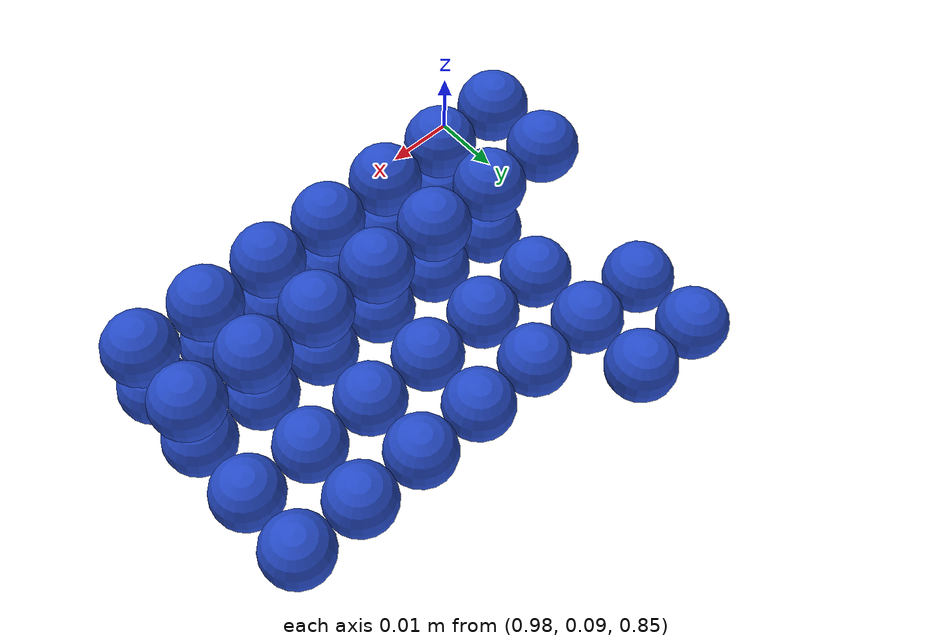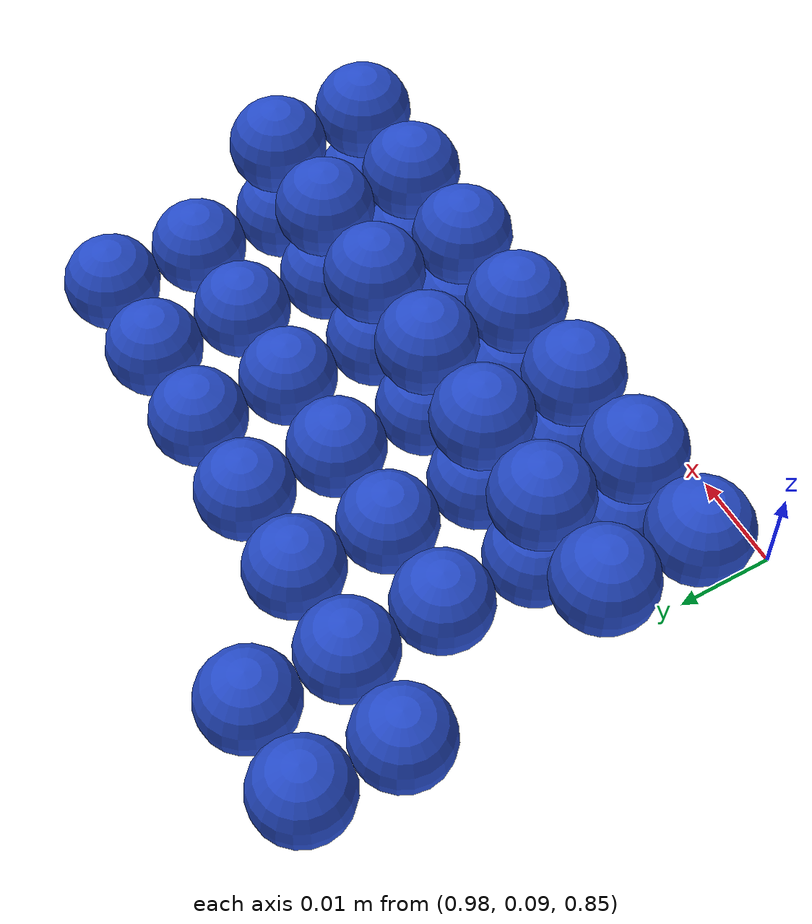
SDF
<sdf version="1.4">
 <world name="default">
  <include><uri>model://ground_plane</uri></include>
  <include><uri>model://sun</uri></include>
  <model name="ball_bearing_4">
   <link name="link">
    <pose>0 0 0.003 0 0 0</pose>
    <inertial>
     <mass>0.0011</mass>
     <inertia>
      <ixx>3.96e-09</ixx>
      <ixy>0</ixy>
      <ixz>0</ixz>
      <iyy>3.96e-09</iyy>
      <iyz>0</iyz>
      <izz>3.96e-09</izz>
     </inertia>
    </inertial>
    <collision name="collision">
     <geometry><sphere><radius>0.005</radius></sphere></geometry>
     <surface><contact><ode><max_vel>0.1</max_vel><min_depth>0.0001</min_depth></ode></contact></surface>
    </collision>
    <visual name="visual">
     <geometry><sphere><radius>0.005</radius></sphere></geometry>
     <material>
      <script><uri>file://media/materials/scripts/gazebo.material</uri><name>Gazebo/Blue</name></script>
     </material>
    </visual>
    <velocity_decay><linear>0</linear><angular>0.005</angular></velocity_decay>
   </link>
   <pose>0.99 0.1 0.85 0.0 0.0 0.0</pose>
  </model>
  <model name="ball_bearing_5">
   <link name="link">
    <pose>0 0 0.003 0 0 0</pose>
    <inertial>
     <mass>0.0011</mass>
     <inertia>
      <ixx>3.96e-09</ixx>
      <ixy>0</ixy>
      <ixz>0</ixz>
      <iyy>3.96e-09</iyy>
      <iyz>0</iyz>
      <izz>3.96e-09</izz>
     </inertia>
    </inertial>
    <collision name="collision">
     <geometry><sphere><radius>0.005</radius></sphere></geometry>
     <surface><contact><ode><max_vel>0.1</max_vel><min_depth>0.0001</min_depth></ode></contact></surface>
    </collision>
    <visual name="visual">
     <geometry><sphere><radius>0.005</radius></sphere></geometry>
     <material>
      <script><uri>file://media/materials/scripts/gazebo.material</uri><name>Gazebo/Blue</name></script>
     </material>
    </visual>
    <velocity_decay><linear>0</linear><angular>0.005</angular></velocity_decay>
   </link>
   <pose>1.0 0.1 0.85 0.0 0.0 0.0</pose>
  </model>
  <model name="ball_bearing_6">
   <link name="link">
    <pose>0 0 0.003 0 0 0</pose>
    <inertial>
     <mass>0.0011</mass>
     <inertia>
      <ixx>3.96e-09</ixx>
      <ixy>0</ixy>
      <ixz>0</ixz>
      <iyy>3.96e-09</iyy>
      <iyz>0</iyz>
      <izz>3.96e-09</izz>
     </inertia>
    </inertial>
    <collision name="collision">
     <geometry><sphere><radius>0.005</radius></sphere></geometry>
     <surface><contact><ode><max_vel>0.1</max_vel><min_depth>0.0001</min_depth></ode></contact></surface>
    </collision>
    <visual name="visual">
     <geometry><sphere><radius>0.005</radius></sphere></geometry>
     <material>
      <script><uri>file://media/materials/scripts/gazebo.material</uri><name>Gazebo/Blue</name></script>
     </material>
    </visual>
    <velocity_decay><linear>0</linear><angular>0.005</angular></velocity_decay>
   </link>
   <pose>1.01 0.1 0.85 0.0 0.0 0.0</pose>
  </model>
  <model name="ball_bearing_7">
   <link name="link">
    <pose>0 0 0.003 0 0 0</pose>
    <inertial>
     <mass>0.0011</mass>
     <inertia>
      <ixx>3.96e-09</ixx>
      <ixy>0</ixy>
      <ixz>0</ixz>
      <iyy>3.96e-09</iyy>
      <iyz>0</iyz>
      <izz>3.96e-09</izz>
     </inertia>
    </inertial>
    <collision name="collision">
     <geometry><sphere><radius>0.005</radius></sphere></geometry>
     <surface><contact><ode><max_vel>0.1</max_vel><min_depth>0.0001</min_depth></ode></contact></surface>
    </collision>
    <visual name="visual">
     <geometry><sphere><radius>0.005</radius></sphere></geometry>
     <material>
      <script><uri>file://media/materials/scripts/gazebo.material</uri><name>Gazebo/Blue</name></script>
     </material>
    </visual>
    <velocity_decay><linear>0</linear><angular>0.005</angular></velocity_decay>
   </link>
   <pose>1.02 0.1 0.85 0.0 0.0 0.0</pose>
  </model>
  <model name="ball_bearing_8">
   <link name="link">
    <pose>0 0 0.003 0 0 0</pose>
    <inertial>
     <mass>0.0011</mass>
     <inertia>
      <ixx>3.96e-09</ixx>
      <ixy>0</ixy>
      <ixz>0</ixz>
      <iyy>3.96e-09</iyy>
      <iyz>0</iyz>
      <izz>3.96e-09</izz>
     </inertia>
    </inertial>
    <collision name="collision">
     <geometry><sphere><radius>0.005</radius></sphere></geometry>
     <surface><contact><ode><max_vel>0.1</max_vel><min_depth>0.0001</min_depth></ode></contact></surface>
    </collision>
    <visual name="visual">
     <geometry><sphere><radius>0.005</radius></sphere></geometry>
     <material>
      <script><uri>file://media/materials/scripts/gazebo.material</uri><name>Gazebo/Blue</name></script>
     </material>
    </visual>
    <velocity_decay><linear>0</linear><angular>0.005</angular></velocity_decay>
   </link>
   <pose>1.03 0.1 0.85 0.0 0.0 0.0</pose>
  </model>
  <model name="ball_bearing_9">
   <link name="link">
    <pose>0 0 0.003 0 0 0</pose>
    <inertial>
     <mass>0.0011</mass>
     <inertia>
      <ixx>3.96e-09</ixx>
      <ixy>0</ixy>
      <ixz>0</ixz>
      <iyy>3.96e-09</iyy>
      <iyz>0</iyz>
      <izz>3.96e-09</izz>
     </inertia>
    </inertial>
    <collision name="collision">
     <geometry><sphere><radius>0.005</radius></sphere></geometry>
     <surface><contact><ode><max_vel>0.1</max_vel><min_depth>0.0001</min_depth></ode></contact></surface>
    </collision>
    <visual name="visual">
     <geometry><sphere><radius>0.005</radius></sphere></geometry>
     <material>
      <script><uri>file://media/materials/scripts/gazebo.material</uri><name>Gazebo/Blue</name></script>
     </material>
    </visual>
    <velocity_decay><linear>0</linear><angular>0.005</angular></velocity_decay>
   </link>
   <pose>1.04 0.1 0.85 0.0 0.0 0.0</pose>
  </model>
  <model name="ball_bearing_14">
   <link name="link">
    <pose>0 0 0.003 0 0 0</pose>
    <inertial>
     <mass>0.0011</mass>
     <inertia>
      <ixx>3.96e-09</ixx>
      <ixy>0</ixy>
      <ixz>0</ixz>
      <iyy>3.96e-09</iyy>
      <iyz>0</iyz>
      <izz>3.96e-09</izz>
     </inertia>
    </inertial>
    <collision name="collision">
     <geometry><sphere><radius>0.005</radius></sphere></geometry>
     <surface><contact><ode><max_vel>0.1</max_vel><min_depth>0.0001</min_depth></ode></contact></surface>
    </collision>
    <visual name="visual">
     <geometry><sphere><radius>0.005</radius></sphere></geometry>
     <material>
      <script><uri>file://media/materials/scripts/gazebo.material</uri><name>Gazebo/Blue</name></script>
     </material>
    </visual>
    <velocity_decay><linear>0</linear><angular>0.005</angular></velocity_decay>
   </link>
   <pose>0.99 0.11 0.85 0.0 0.0 0.0</pose>
  </model>
  <model name="ball_bearing_15">
   <link name="link">
    <pose>0 0 0.003 0 0 0</pose>
    <inertial>
     <mass>0.0011</mass>
     <inertia>
      <ixx>3.96e-09</ixx>
      <ixy>0</ixy>
      <ixz>0</ixz>
      <iyy>3.96e-09</iyy>
      <iyz>0</iyz>
      <izz>3.96e-09</izz>
     </inertia>
    </inertial>
    <collision name="collision">
     <geometry><sphere><radius>0.005</radius></sphere></geometry>
     <surface><contact><ode><max_vel>0.1</max_vel><min_depth>0.0001</min_depth></ode></contact></surface>
    </collision>
    <visual name="visual">
     <geometry><sphere><radius>0.005</radius></sphere></geometry>
     <material>
      <script><uri>file://media/materials/scripts/gazebo.material</uri><name>Gazebo/Blue</name></script>
     </material>
    </visual>
    <velocity_decay><linear>0</linear><angular>0.005</angular></velocity_decay>
   </link>
   <pose>1.0 0.11 0.85 0.0 0.0 0.0</pose>
  </model>
  <model name="ball_bearing_16">
   <link name="link">
    <pose>0 0 0.003 0 0 0</pose>
    <inertial>
     <mass>0.0011</mass>
     <inertia>
      <ixx>3.96e-09</ixx>
      <ixy>0</ixy>
      <ixz>0</ixz>
      <iyy>3.96e-09</iyy>
      <iyz>0</iyz>
      <izz>3.96e-09</izz>
     </inertia>
    </inertial>
    <collision name="collision">
     <geometry><sphere><radius>0.005</radius></sphere></geometry>
     <surface><contact><ode><max_vel>0.1</max_vel><min_depth>0.0001</min_depth></ode></contact></surface>
    </collision>
    <visual name="visual">
     <geometry><sphere><radius>0.005</radius></sphere></geometry>
     <material>
      <script><uri>file://media/materials/scripts/gazebo.material</uri><name>Gazebo/Blue</name></script>
     </material>
    </visual>
    <velocity_decay><linear>0</linear><angular>0.005</angular></velocity_decay>
   </link>
   <pose>1.01 0.11 0.85 0.0 0.0 0.0</pose>
  </model>
  <model name="ball_bearing_17">
   <link name="link">
    <pose>0 0 0.003 0 0 0</pose>
    <inertial>
     <mass>0.0011</mass>
     <inertia>
      <ixx>3.96e-09</ixx>
      <ixy>0</ixy>
      <ixz>0</ixz>
      <iyy>3.96e-09</iyy>
      <iyz>0</iyz>
      <izz>3.96e-09</izz>
     </inertia>
    </inertial>
    <collision name="collision">
     <geometry><sphere><radius>0.005</radius></sphere></geometry>
     <surface><contact><ode><max_vel>0.1</max_vel><min_depth>0.0001</min_depth></ode></contact></surface>
    </collision>
    <visual name="visual">
     <geometry><sphere><radius>0.005</radius></sphere></geometry>
     <material>
      <script><uri>file://media/materials/scripts/gazebo.material</uri><name>Gazebo/Blue</name></script>
     </material>
    </visual>
    <velocity_decay><linear>0</linear><angular>0.005</angular></velocity_decay>
   </link>
   <pose>1.02 0.11 0.85 0.0 0.0 0.0</pose>
  </model>
  <model name="ball_bearing_18">
   <link name="link">
    <pose>0 0 0.003 0 0 0</pose>
    <inertial>
     <mass>0.0011</mass>
     <inertia>
      <ixx>3.96e-09</ixx>
      <ixy>0</ixy>
      <ixz>0</ixz>
      <iyy>3.96e-09</iyy>
      <iyz>0</iyz>
      <izz>3.96e-09</izz>
     </inertia>
    </inertial>
    <collision name="collision">
     <geometry><sphere><radius>0.005</radius></sphere></geometry>
     <surface><contact><ode><max_vel>0.1</max_vel><min_depth>0.0001</min_depth></ode></contact></surface>
    </collision>
    <visual name="visual">
     <geometry><sphere><radius>0.005</radius></sphere></geometry>
     <material>
      <script><uri>file://media/materials/scripts/gazebo.material</uri><name>Gazebo/Blue</name></script>
     </material>
    </visual>
    <velocity_decay><linear>0</linear><angular>0.005</angular></velocity_decay>
   </link>
   <pose>1.03 0.11 0.85 0.0 0.0 0.0</pose>
  </model>
  <model name="ball_bearing_19">
   <link name="link">
    <pose>0 0 0.003 0 0 0</pose>
    <inertial>
     <mass>0.0011</mass>
     <inertia>
      <ixx>3.96e-09</ixx>
      <ixy>0</ixy>
      <ixz>0</ixz>
      <iyy>3.96e-09</iyy>
      <iyz>0</iyz>
      <izz>3.96e-09</izz>
     </inertia>
    </inertial>
    <collision name="collision">
     <geometry><sphere><radius>0.005</radius></sphere></geometry>
     <surface><contact><ode><max_vel>0.1</max_vel><min_depth>0.0001</min_depth></ode></contact></surface>
    </collision>
    <visual name="visual">
     <geometry><sphere><radius>0.005</radius></sphere></geometry>
     <material>
      <script><uri>file://media/materials/scripts/gazebo.material</uri><name>Gazebo/Blue</name></script>
     </material>
    </visual>
    <velocity_decay><linear>0</linear><angular>0.005</angular></velocity_decay>
   </link>
   <pose>1.04 0.11 0.85 0.0 0.0 0.0</pose>
  </model>
  <model name="ball_bearing_24">
   <link name="link">
    <pose>0 0 0.003 0 0 0</pose>
    <inertial>
     <mass>0.0011</mass>
     <inertia>
      <ixx>3.96e-09</ixx>
      <ixy>0</ixy>
      <ixz>0</ixz>
      <iyy>3.96e-09</iyy>
      <iyz>0</iyz>
      <izz>3.96e-09</izz>
     </inertia>
    </inertial>
    <collision name="collision">
     <geometry><sphere><radius>0.005</radius></sphere></geometry>
     <surface><contact><ode><max_vel>0.1</max_vel><min_depth>0.0001</min_depth></ode></contact></surface>
    </collision>
    <visual name="visual">
     <geometry><sphere><radius>0.005</radius></sphere></geometry>
     <material>
      <script><uri>file://media/materials/scripts/gazebo.material</uri><name>Gazebo/Blue</name></script>
     </material>
    </visual>
    <velocity_decay><linear>0</linear><angular>0.005</angular></velocity_decay>
   </link>
   <pose>0.99 0.12 0.85 0.0 0.0 0.0</pose>
  </model>
  <model name="ball_bearing_25">
   <link name="link">
    <pose>0 0 0.003 0 0 0</pose>
    <inertial>
     <mass>0.0011</mass>
     <inertia>
      <ixx>3.96e-09</ixx>
      <ixy>0</ixy>
      <ixz>0</ixz>
      <iyy>3.96e-09</iyy>
      <iyz>0</iyz>
      <izz>3.96e-09</izz>
     </inertia>
    </inertial>
    <collision name="collision">
     <geometry><sphere><radius>0.005</radius></sphere></geometry>
     <surface><contact><ode><max_vel>0.1</max_vel><min_depth>0.0001</min_depth></ode></contact></surface>
    </collision>
    <visual name="visual">
     <geometry><sphere><radius>0.005</radius></sphere></geometry>
     <material>
      <script><uri>file://media/materials/scripts/gazebo.material</uri><name>Gazebo/Blue</name></script>
     </material>
    </visual>
    <velocity_decay><linear>0</linear><angular>0.005</angular></velocity_decay>
   </link>
   <pose>1.0 0.12 0.85 0.0 0.0 0.0</pose>
  </model>
  <model name="ball_bearing_26">
   <link name="link">
    <pose>0 0 0.003 0 0 0</pose>
    <inertial>
     <mass>0.0011</mass>
     <inertia>
      <ixx>3.96e-09</ixx>
      <ixy>0</ixy>
      <ixz>0</ixz>
      <iyy>3.96e-09</iyy>
      <iyz>0</iyz>
      <izz>3.96e-09</izz>
     </inertia>
    </inertial>
    <collision name="collision">
     <geometry><sphere><radius>0.005</radius></sphere></geometry>
     <surface><contact><ode><max_vel>0.1</max_vel><min_depth>0.0001</min_depth></ode></contact></surface>
    </collision>
    <visual name="visual">
     <geometry><sphere><radius>0.005</radius></sphere></geometry>
     <material>
      <script><uri>file://media/materials/scripts/gazebo.material</uri><name>Gazebo/Blue</name></script>
     </material>
    </visual>
    <velocity_decay><linear>0</linear><angular>0.005</angular></velocity_decay>
   </link>
   <pose>1.01 0.12 0.85 0.0 0.0 0.0</pose>
  </model>
  <model name="ball_bearing_27">
   <link name="link">
    <pose>0 0 0.003 0 0 0</pose>
    <inertial>
     <mass>0.0011</mass>
     <inertia>
      <ixx>3.96e-09</ixx>
      <ixy>0</ixy>
      <ixz>0</ixz>
      <iyy>3.96e-09</iyy>
      <iyz>0</iyz>
      <izz>3.96e-09</izz>
     </inertia>
    </inertial>
    <collision name="collision">
     <geometry><sphere><radius>0.005</radius></sphere></geometry>
     <surface><contact><ode><max_vel>0.1</max_vel><min_depth>0.0001</min_depth></ode></contact></surface>
    </collision>
    <visual name="visual">
     <geometry><sphere><radius>0.005</radius></sphere></geometry>
     <material>
      <script><uri>file://media/materials/scripts/gazebo.material</uri><name>Gazebo/Blue</name></script>
     </material>
    </visual>
    <velocity_decay><linear>0</linear><angular>0.005</angular></velocity_decay>
   </link>
   <pose>1.02 0.12 0.85 0.0 0.0 0.0</pose>
  </model>
  <model name="ball_bearing_28">
   <link name="link">
    <pose>0 0 0.003 0 0 0</pose>
    <inertial>
     <mass>0.0011</mass>
     <inertia>
      <ixx>3.96e-09</ixx>
      <ixy>0</ixy>
      <ixz>0</ixz>
      <iyy>3.96e-09</iyy>
      <iyz>0</iyz>
      <izz>3.96e-09</izz>
     </inertia>
    </inertial>
    <collision name="collision">
     <geometry><sphere><radius>0.005</radius></sphere></geometry>
     <surface><contact><ode><max_vel>0.1</max_vel><min_depth>0.0001</min_depth></ode></contact></surface>
    </collision>
    <visual name="visual">
     <geometry><sphere><radius>0.005</radius></sphere></geometry>
     <material>
      <script><uri>file://media/materials/scripts/gazebo.material</uri><name>Gazebo/Blue</name></script>
     </material>
    </visual>
    <velocity_decay><linear>0</linear><angular>0.005</angular></velocity_decay>
   </link>
   <pose>1.03 0.12 0.85 0.0 0.0 0.0</pose>
  </model>
  <model name="ball_bearing_29">
   <link name="link">
    <pose>0 0 0.003 0 0 0</pose>
    <inertial>
     <mass>0.0011</mass>
     <inertia>
      <ixx>3.96e-09</ixx>
      <ixy>0</ixy>
      <ixz>0</ixz>
      <iyy>3.96e-09</iyy>
      <iyz>0</iyz>
      <izz>3.96e-09</izz>
     </inertia>
    </inertial>
    <collision name="collision">
     <geometry><sphere><radius>0.005</radius></sphere></geometry>
     <surface><contact><ode><max_vel>0.1</max_vel><min_depth>0.0001</min_depth></ode></contact></surface>
    </collision>
    <visual name="visual">
     <geometry><sphere><radius>0.005</radius></sphere></geometry>
     <material>
      <script><uri>file://media/materials/scripts/gazebo.material</uri><name>Gazebo/Blue</name></script>
     </material>
    </visual>
    <velocity_decay><linear>0</linear><angular>0.005</angular></velocity_decay>
   </link>
   <pose>1.04 0.12 0.85 0.0 0.0 0.0</pose>
  </model>
  <model name="ball_bearing_33">
   <link name="link">
    <pose>0 0 0.003 0 0 0</pose>
    <inertial>
     <mass>0.0011</mass>
     <inertia>
      <ixx>3.96e-09</ixx>
      <ixy>0</ixy>
      <ixz>0</ixz>
      <iyy>3.96e-09</iyy>
      <iyz>0</iyz>
      <izz>3.96e-09</izz>
     </inertia>
    </inertial>
    <collision name="collision">
     <geometry><sphere><radius>0.005</radius></sphere></geometry>
     <surface><contact><ode><max_vel>0.1</max_vel><min_depth>0.0001</min_depth></ode></contact></surface>
    </collision>
    <visual name="visual">
     <geometry><sphere><radius>0.005</radius></sphere></geometry>
     <material>
      <script><uri>file://media/materials/scripts/gazebo.material</uri><name>Gazebo/Blue</name></script>
     </material>
    </visual>
    <velocity_decay><linear>0</linear><angular>0.005</angular></velocity_decay>
   </link>
   <pose>0.98 0.13 0.85 0.0 0.0 0.0</pose>
  </model>
  <model name="ball_bearing_34">
   <link name="link">
    <pose>0 0 0.003 0 0 0</pose>
    <inertial>
     <mass>0.0011</mass>
     <inertia>
      <ixx>3.96e-09</ixx>
      <ixy>0</ixy>
      <ixz>0</ixz>
      <iyy>3.96e-09</iyy>
      <iyz>0</iyz>
      <izz>3.96e-09</izz>
     </inertia>
    </inertial>
    <collision name="collision">
     <geometry><sphere><radius>0.005</radius></sphere></geometry>
     <surface><contact><ode><max_vel>0.1</max_vel><min_depth>0.0001</min_depth></ode></contact></surface>
    </collision>
    <visual name="visual">
     <geometry><sphere><radius>0.005</radius></sphere></geometry>
     <material>
      <script><uri>file://media/materials/scripts/gazebo.material</uri><name>Gazebo/Blue</name></script>
     </material>
    </visual>
    <velocity_decay><linear>0</linear><angular>0.005</angular></velocity_decay>
   </link>
   <pose>0.99 0.13 0.85 0.0 0.0 0.0</pose>
  </model>
  <model name="ball_bearing_35">
   <link name="link">
    <pose>0 0 0.003 0 0 0</pose>
    <inertial>
     <mass>0.0011</mass>
     <inertia>
      <ixx>3.96e-09</ixx>
      <ixy>0</ixy>
      <ixz>0</ixz>
      <iyy>3.96e-09</iyy>
      <iyz>0</iyz>
      <izz>3.96e-09</izz>
     </inertia>
    </inertial>
    <collision name="collision">
     <geometry><sphere><radius>0.005</radius></sphere></geometry>
     <surface><contact><ode><max_vel>0.1</max_vel><min_depth>0.0001</min_depth></ode></contact></surface>
    </collision>
    <visual name="visual">
     <geometry><sphere><radius>0.005</radius></sphere></geometry>
     <material>
      <script><uri>file://media/materials/scripts/gazebo.material</uri><name>Gazebo/Blue</name></script>
     </material>
    </visual>
    <velocity_decay><linear>0</linear><angular>0.005</angular></velocity_decay>
   </link>
   <pose>1.0 0.13 0.85 0.0 0.0 0.0</pose>
  </model>
  <model name="ball_bearing_36">
   <link name="link">
    <pose>0 0 0.003 0 0 0</pose>
    <inertial>
     <mass>0.0011</mass>
     <inertia>
      <ixx>3.96e-09</ixx>
      <ixy>0</ixy>
      <ixz>0</ixz>
      <iyy>3.96e-09</iyy>
      <iyz>0</iyz>
      <izz>3.96e-09</izz>
     </inertia>
    </inertial>
    <collision name="collision">
     <geometry><sphere><radius>0.005</radius></sphere></geometry>
     <surface><contact><ode><max_vel>0.1</max_vel><min_depth>0.0001</min_depth></ode></contact></surface>
    </collision>
    <visual name="visual">
     <geometry><sphere><radius>0.005</radius></sphere></geometry>
     <material>
      <script><uri>file://media/materials/scripts/gazebo.material</uri><name>Gazebo/Blue</name></script>
     </material>
    </visual>
    <velocity_decay><linear>0</linear><angular>0.005</angular></velocity_decay>
   </link>
   <pose>1.01 0.13 0.85 0.0 0.0 0.0</pose>
  </model>
  <model name="ball_bearing_37">
   <link name="link">
    <pose>0 0 0.003 0 0 0</pose>
    <inertial>
     <mass>0.0011</mass>
     <inertia>
      <ixx>3.96e-09</ixx>
      <ixy>0</ixy>
      <ixz>0</ixz>
      <iyy>3.96e-09</iyy>
      <iyz>0</iyz>
      <izz>3.96e-09</izz>
     </inertia>
    </inertial>
    <collision name="collision">
     <geometry><sphere><radius>0.005</radius></sphere></geometry>
     <surface><contact><ode><max_vel>0.1</max_vel><min_depth>0.0001</min_depth></ode></contact></surface>
    </collision>
    <visual name="visual">
     <geometry><sphere><radius>0.005</radius></sphere></geometry>
     <material>
      <script><uri>file://media/materials/scripts/gazebo.material</uri><name>Gazebo/Blue</name></script>
     </material>
    </visual>
    <velocity_decay><linear>0</linear><angular>0.005</angular></velocity_decay>
   </link>
   <pose>1.02 0.13 0.85 0.0 0.0 0.0</pose>
  </model>
  <model name="ball_bearing_38">
   <link name="link">
    <pose>0 0 0.003 0 0 0</pose>
    <inertial>
     <mass>0.0011</mass>
     <inertia>
      <ixx>3.96e-09</ixx>
      <ixy>0</ixy>
      <ixz>0</ixz>
      <iyy>3.96e-09</iyy>
      <iyz>0</iyz>
      <izz>3.96e-09</izz>
     </inertia>
    </inertial>
    <collision name="collision">
     <geometry><sphere><radius>0.005</radius></sphere></geometry>
     <surface><contact><ode><max_vel>0.1</max_vel><min_depth>0.0001</min_depth></ode></contact></surface>
    </collision>
    <visual name="visual">
     <geometry><sphere><radius>0.005</radius></sphere></geometry>
     <material>
      <script><uri>file://media/materials/scripts/gazebo.material</uri><name>Gazebo/Blue</name></script>
     </material>
    </visual>
    <velocity_decay><linear>0</linear><angular>0.005</angular></velocity_decay>
   </link>
   <pose>1.03 0.13 0.85 0.0 0.0 0.0</pose>
  </model>
  <model name="ball_bearing_39">
   <link name="link">
    <pose>0 0 0.003 0 0 0</pose>
    <inertial>
     <mass>0.0011</mass>
     <inertia>
      <ixx>3.96e-09</ixx>
      <ixy>0</ixy>
      <ixz>0</ixz>
      <iyy>3.96e-09</iyy>
      <iyz>0</iyz>
      <izz>3.96e-09</izz>
     </inertia>
    </inertial>
    <collision name="collision">
     <geometry><sphere><radius>0.005</radius></sphere></geometry>
     <surface><contact><ode><max_vel>0.1</max_vel><min_depth>0.0001</min_depth></ode></contact></surface>
    </collision>
    <visual name="visual">
     <geometry><sphere><radius>0.005</radius></sphere></geometry>
     <material>
      <script><uri>file://media/materials/scripts/gazebo.material</uri><name>Gazebo/Blue</name></script>
     </material>
    </visual>
    <velocity_decay><linear>0</linear><angular>0.005</angular></velocity_decay>
   </link>
   <pose>1.04 0.13 0.85 0.0 0.0 0.0</pose>
  </model>
  <model name="ball_bearing_43">
   <link name="link">
    <pose>0 0 0.003 0 0 0</pose>
    <inertial>
     <mass>0.0011</mass>
     <inertia>
      <ixx>3.96e-09</ixx>
      <ixy>0</ixy>
      <ixz>0</ixz>
      <iyy>3.96e-09</iyy>
      <iyz>0</iyz>
      <izz>3.96e-09</izz>
     </inertia>
    </inertial>
    <collision name="collision">
     <geometry><sphere><radius>0.005</radius></sphere></geometry>
     <surface><contact><ode><max_vel>0.1</max_vel><min_depth>0.0001</min_depth></ode></contact></surface>
    </collision>
    <visual name="visual">
     <geometry><sphere><radius>0.005</radius></sphere></geometry>
     <material>
      <script><uri>file://media/materials/scripts/gazebo.material</uri><name>Gazebo/Blue</name></script>
     </material>
    </visual>
    <velocity_decay><linear>0</linear><angular>0.005</angular></velocity_decay>
   </link>
   <pose>0.98 0.14 0.85 0.0 0.0 0.0</pose>
  </model>
  <model name="ball_bearing_44">
   <link name="link">
    <pose>0 0 0.003 0 0 0</pose>
    <inertial>
     <mass>0.0011</mass>
     <inertia>
      <ixx>3.96e-09</ixx>
      <ixy>0</ixy>
      <ixz>0</ixz>
      <iyy>3.96e-09</iyy>
      <iyz>0</iyz>
      <izz>3.96e-09</izz>
     </inertia>
    </inertial>
    <collision name="collision">
     <geometry><sphere><radius>0.005</radius></sphere></geometry>
     <surface><contact><ode><max_vel>0.1</max_vel><min_depth>0.0001</min_depth></ode></contact></surface>
    </collision>
    <visual name="visual">
     <geometry><sphere><radius>0.005</radius></sphere></geometry>
     <material>
      <script><uri>file://media/materials/scripts/gazebo.material</uri><name>Gazebo/Blue</name></script>
     </material>
    </visual>
    <velocity_decay><linear>0</linear><angular>0.005</angular></velocity_decay>
   </link>
   <pose>0.99 0.14 0.85 0.0 0.0 0.0</pose>
  </model>
  <model name="ball_bearing_103">
   <link name="link">
    <pose>0 0 0.003 0 0 0</pose>
    <inertial>
     <mass>0.0011</mass>
     <inertia>
      <ixx>3.96e-09</ixx>
      <ixy>0</ixy>
      <ixz>0</ixz>
      <iyy>3.96e-09</iyy>
      <iyz>0</iyz>
      <izz>3.96e-09</izz>
     </inertia>
    </inertial>
    <collision name="collision">
     <geometry><sphere><radius>0.005</radius></sphere></geometry>
     <surface><contact><ode><max_vel>0.1</max_vel><min_depth>0.0001</min_depth></ode></contact></surface>
    </collision>
    <visual name="visual">
     <geometry><sphere><radius>0.005</radius></sphere></geometry>
     <material>
      <script><uri>file://media/materials/scripts/gazebo.material</uri><name>Gazebo/Blue</name></script>
     </material>
    </visual>
    <velocity_decay><linear>0</linear><angular>0.005</angular></velocity_decay>
   </link>
   <pose>0.98 0.1 0.86 0.0 0.0 0.0</pose>
  </model>
  <model name="ball_bearing_104">
   <link name="link">
    <pose>0 0 0.003 0 0 0</pose>
    <inertial>
     <mass>0.0011</mass>
     <inertia>
      <ixx>3.96e-09</ixx>
      <ixy>0</ixy>
      <ixz>0</ixz>
      <iyy>3.96e-09</iyy>
      <iyz>0</iyz>
      <izz>3.96e-09</izz>
     </inertia>
    </inertial>
    <collision name="collision">
     <geometry><sphere><radius>0.005</radius></sphere></geometry>
     <surface><contact><ode><max_vel>0.1</max_vel><min_depth>0.0001</min_depth></ode></contact></surface>
    </collision>
    <visual name="visual">
     <geometry><sphere><radius>0.005</radius></sphere></geometry>
     <material>
      <script><uri>file://media/materials/scripts/gazebo.material</uri><name>Gazebo/Blue</name></script>
     </material>
    </visual>
    <velocity_decay><linear>0</linear><angular>0.005</angular></velocity_decay>
   </link>
   <pose>0.99 0.1 0.86 0.0 0.0 0.0</pose>
  </model>
  <model name="ball_bearing_105">
   <link name="link">
    <pose>0 0 0.003 0 0 0</pose>
    <inertial>
     <mass>0.0011</mass>
     <inertia>
      <ixx>3.96e-09</ixx>
      <ixy>0</ixy>
      <ixz>0</ixz>
      <iyy>3.96e-09</iyy>
      <iyz>0</iyz>
      <izz>3.96e-09</izz>
     </inertia>
    </inertial>
    <collision name="collision">
     <geometry><sphere><radius>0.005</radius></sphere></geometry>
     <surface><contact><ode><max_vel>0.1</max_vel><min_depth>0.0001</min_depth></ode></contact></surface>
    </collision>
    <visual name="visual">
     <geometry><sphere><radius>0.005</radius></sphere></geometry>
     <material>
      <script><uri>file://media/materials/scripts/gazebo.material</uri><name>Gazebo/Blue</name></script>
     </material>
    </visual>
    <velocity_decay><linear>0</linear><angular>0.005</angular></velocity_decay>
   </link>
   <pose>1.0 0.1 0.86 0.0 0.0 0.0</pose>
  </model>
  <model name="ball_bearing_106">
   <link name="link">
    <pose>0 0 0.003 0 0 0</pose>
    <inertial>
     <mass>0.0011</mass>
     <inertia>
      <ixx>3.96e-09</ixx>
      <ixy>0</ixy>
      <ixz>0</ixz>
      <iyy>3.96e-09</iyy>
      <iyz>0</iyz>
      <izz>3.96e-09</izz>
     </inertia>
    </inertial>
    <collision name="collision">
     <geometry><sphere><radius>0.005</radius></sphere></geometry>
     <surface><contact><ode><max_vel>0.1</max_vel><min_depth>0.0001</min_depth></ode></contact></surface>
    </collision>
    <visual name="visual">
     <geometry><sphere><radius>0.005</radius></sphere></geometry>
     <material>
      <script><uri>file://media/materials/scripts/gazebo.material</uri><name>Gazebo/Blue</name></script>
     </material>
    </visual>
    <velocity_decay><linear>0</linear><angular>0.005</angular></velocity_decay>
   </link>
   <pose>1.01 0.1 0.86 0.0 0.0 0.0</pose>
  </model>
  <model name="ball_bearing_107">
   <link name="link">
    <pose>0 0 0.003 0 0 0</pose>
    <inertial>
     <mass>0.0011</mass>
     <inertia>
      <ixx>3.96e-09</ixx>
      <ixy>0</ixy>
      <ixz>0</ixz>
      <iyy>3.96e-09</iyy>
      <iyz>0</iyz>
      <izz>3.96e-09</izz>
     </inertia>
    </inertial>
    <collision name="collision">
     <geometry><sphere><radius>0.005</radius></sphere></geometry>
     <surface><contact><ode><max_vel>0.1</max_vel><min_depth>0.0001</min_depth></ode></contact></surface>
    </collision>
    <visual name="visual">
     <geometry><sphere><radius>0.005</radius></sphere></geometry>
     <material>
      <script><uri>file://media/materials/scripts/gazebo.material</uri><name>Gazebo/Blue</name></script>
     </material>
    </visual>
    <velocity_decay><linear>0</linear><angular>0.005</angular></velocity_decay>
   </link>
   <pose>1.02 0.1 0.86 0.0 0.0 0.0</pose>
  </model>
  <model name="ball_bearing_108">
   <link name="link">
    <pose>0 0 0.003 0 0 0</pose>
    <inertial>
     <mass>0.0011</mass>
     <inertia>
      <ixx>3.96e-09</ixx>
      <ixy>0</ixy>
      <ixz>0</ixz>
      <iyy>3.96e-09</iyy>
      <iyz>0</iyz>
      <izz>3.96e-09</izz>
     </inertia>
    </inertial>
    <collision name="collision">
     <geometry><sphere><radius>0.005</radius></sphere></geometry>
     <surface><contact><ode><max_vel>0.1</max_vel><min_depth>0.0001</min_depth></ode></contact></surface>
    </collision>
    <visual name="visual">
     <geometry><sphere><radius>0.005</radius></sphere></geometry>
     <material>
      <script><uri>file://media/materials/scripts/gazebo.material</uri><name>Gazebo/Blue</name></script>
     </material>
    </visual>
    <velocity_decay><linear>0</linear><angular>0.005</angular></velocity_decay>
   </link>
   <pose>1.03 0.1 0.86 0.0 0.0 0.0</pose>
  </model>
  <model name="ball_bearing_109">
   <link name="link">
    <pose>0 0 0.003 0 0 0</pose>
    <inertial>
     <mass>0.0011</mass>
     <inertia>
      <ixx>3.96e-09</ixx>
      <ixy>0</ixy>
      <ixz>0</ixz>
      <iyy>3.96e-09</iyy>
      <iyz>0</iyz>
      <izz>3.96e-09</izz>
     </inertia>
    </inertial>
    <collision name="collision">
     <geometry><sphere><radius>0.005</radius></sphere></geometry>
     <surface><contact><ode><max_vel>0.1</max_vel><min_depth>0.0001</min_depth></ode></contact></surface>
    </collision>
    <visual name="visual">
     <geometry><sphere><radius>0.005</radius></sphere></geometry>
     <material>
      <script><uri>file://media/materials/scripts/gazebo.material</uri><name>Gazebo/Blue</name></script>
     </material>
    </visual>
    <velocity_decay><linear>0</linear><angular>0.005</angular></velocity_decay>
   </link>
   <pose>1.04 0.1 0.86 0.0 0.0 0.0</pose>
  </model>
  <model name="ball_bearing_113">
   <link name="link">
    <pose>0 0 0.003 0 0 0</pose>
    <inertial>
     <mass>0.0011</mass>
     <inertia>
      <ixx>3.96e-09</ixx>
      <ixy>0</ixy>
      <ixz>0</ixz>
      <iyy>3.96e-09</iyy>
      <iyz>0</iyz>
      <izz>3.96e-09</izz>
     </inertia>
    </inertial>
    <collision name="collision">
     <geometry><sphere><radius>0.005</radius></sphere></geometry>
     <surface><contact><ode><max_vel>0.1</max_vel><min_depth>0.0001</min_depth></ode></contact></surface>
    </collision>
    <visual name="visual">
     <geometry><sphere><radius>0.005</radius></sphere></geometry>
     <material>
      <script><uri>file://media/materials/scripts/gazebo.material</uri><name>Gazebo/Blue</name></script>
     </material>
    </visual>
    <velocity_decay><linear>0</linear><angular>0.005</angular></velocity_decay>
   </link>
   <pose>0.98 0.11 0.86 0.0 0.0 0.0</pose>
  </model>
  <model name="ball_bearing_114">
   <link name="link">
    <pose>0 0 0.003 0 0 0</pose>
    <inertial>
     <mass>0.0011</mass>
     <inertia>
      <ixx>3.96e-09</ixx>
      <ixy>0</ixy>
      <ixz>0</ixz>
      <iyy>3.96e-09</iyy>
      <iyz>0</iyz>
      <izz>3.96e-09</izz>
     </inertia>
    </inertial>
    <collision name="collision">
     <geometry><sphere><radius>0.005</radius></sphere></geometry>
     <surface><contact><ode><max_vel>0.1</max_vel><min_depth>0.0001</min_depth></ode></contact></surface>
    </collision>
    <visual name="visual">
     <geometry><sphere><radius>0.005</radius></sphere></geometry>
     <material>
      <script><uri>file://media/materials/scripts/gazebo.material</uri><name>Gazebo/Blue</name></script>
     </material>
    </visual>
    <velocity_decay><linear>0</linear><angular>0.005</angular></velocity_decay>
   </link>
   <pose>0.99 0.11 0.86 0.0 0.0 0.0</pose>
  </model>
  <model name="ball_bearing_115">
   <link name="link">
    <pose>0 0 0.003 0 0 0</pose>
    <inertial>
     <mass>0.0011</mass>
     <inertia>
      <ixx>3.96e-09</ixx>
      <ixy>0</ixy>
      <ixz>0</ixz>
      <iyy>3.96e-09</iyy>
      <iyz>0</iyz>
      <izz>3.96e-09</izz>
     </inertia>
    </inertial>
    <collision name="collision">
     <geometry><sphere><radius>0.005</radius></sphere></geometry>
     <surface><contact><ode><max_vel>0.1</max_vel><min_depth>0.0001</min_depth></ode></contact></surface>
    </collision>
    <visual name="visual">
     <geometry><sphere><radius>0.005</radius></sphere></geometry>
     <material>
      <script><uri>file://media/materials/scripts/gazebo.material</uri><name>Gazebo/Blue</name></script>
     </material>
    </visual>
    <velocity_decay><linear>0</linear><angular>0.005</angular></velocity_decay>
   </link>
   <pose>1.0 0.11 0.86 0.0 0.0 0.0</pose>
  </model>
  <model name="ball_bearing_116">
   <link name="link">
    <pose>0 0 0.003 0 0 0</pose>
    <inertial>
     <mass>0.0011</mass>
     <inertia>
      <ixx>3.96e-09</ixx>
      <ixy>0</ixy>
      <ixz>0</ixz>
      <iyy>3.96e-09</iyy>
      <iyz>0</iyz>
      <izz>3.96e-09</izz>
     </inertia>
    </inertial>
    <collision name="collision">
     <geometry><sphere><radius>0.005</radius></sphere></geometry>
     <surface><contact><ode><max_vel>0.1</max_vel><min_depth>0.0001</min_depth></ode></contact></surface>
    </collision>
    <visual name="visual">
     <geometry><sphere><radius>0.005</radius></sphere></geometry>
     <material>
      <script><uri>file://media/materials/scripts/gazebo.material</uri><name>Gazebo/Blue</name></script>
     </material>
    </visual>
    <velocity_decay><linear>0</linear><angular>0.005</angular></velocity_decay>
   </link>
   <pose>1.01 0.11 0.86 0.0 0.0 0.0</pose>
  </model>
  <model name="ball_bearing_117">
   <link name="link">
    <pose>0 0 0.003 0 0 0</pose>
    <inertial>
     <mass>0.0011</mass>
     <inertia>
      <ixx>3.96e-09</ixx>
      <ixy>0</ixy>
      <ixz>0</ixz>
      <iyy>3.96e-09</iyy>
      <iyz>0</iyz>
      <izz>3.96e-09</izz>
     </inertia>
    </inertial>
    <collision name="collision">
     <geometry><sphere><radius>0.005</radius></sphere></geometry>
     <surface><contact><ode><max_vel>0.1</max_vel><min_depth>0.0001</min_depth></ode></contact></surface>
    </collision>
    <visual name="visual">
     <geometry><sphere><radius>0.005</radius></sphere></geometry>
     <material>
      <script><uri>file://media/materials/scripts/gazebo.material</uri><name>Gazebo/Blue</name></script>
     </material>
    </visual>
    <velocity_decay><linear>0</linear><angular>0.005</angular></velocity_decay>
   </link>
   <pose>1.02 0.11 0.86 0.0 0.0 0.0</pose>
  </model>
  <model name="ball_bearing_118">
   <link name="link">
    <pose>0 0 0.003 0 0 0</pose>
    <inertial>
     <mass>0.0011</mass>
     <inertia>
      <ixx>3.96e-09</ixx>
      <ixy>0</ixy>
      <ixz>0</ixz>
      <iyy>3.96e-09</iyy>
      <iyz>0</iyz>
      <izz>3.96e-09</izz>
     </inertia>
    </inertial>
    <collision name="collision">
     <geometry><sphere><radius>0.005</radius></sphere></geometry>
     <surface><contact><ode><max_vel>0.1</max_vel><min_depth>0.0001</min_depth></ode></contact></surface>
    </collision>
    <visual name="visual">
     <geometry><sphere><radius>0.005</radius></sphere></geometry>
     <material>
      <script><uri>file://media/materials/scripts/gazebo.material</uri><name>Gazebo/Blue</name></script>
     </material>
    </visual>
    <velocity_decay><linear>0</linear><angular>0.005</angular></velocity_decay>
   </link>
   <pose>1.03 0.11 0.86 0.0 0.0 0.0</pose>
  </model>
  <model name="ball_bearing_119">
   <link name="link">
    <pose>0 0 0.003 0 0 0</pose>
    <inertial>
     <mass>0.0011</mass>
     <inertia>
      <ixx>3.96e-09</ixx>
      <ixy>0</ixy>
      <ixz>0</ixz>
      <iyy>3.96e-09</iyy>
      <iyz>0</iyz>
      <izz>3.96e-09</izz>
     </inertia>
    </inertial>
    <collision name="collision">
     <geometry><sphere><radius>0.005</radius></sphere></geometry>
     <surface><contact><ode><max_vel>0.1</max_vel><min_depth>0.0001</min_depth></ode></contact></surface>
    </collision>
    <visual name="visual">
     <geometry><sphere><radius>0.005</radius></sphere></geometry>
     <material>
      <script><uri>file://media/materials/scripts/gazebo.material</uri><name>Gazebo/Blue</name></script>
     </material>
    </visual>
    <velocity_decay><linear>0</linear><angular>0.005</angular></velocity_decay>
   </link>
   <pose>1.04 0.11 0.86 0.0 0.0 0.0</pose>
  </model>
 </world>
</sdf>
